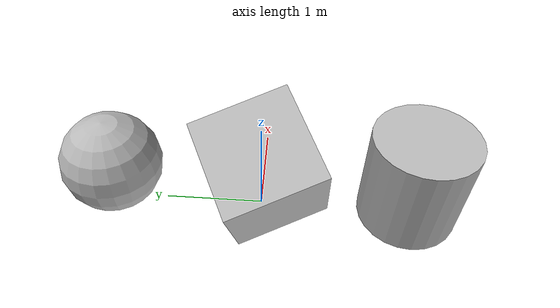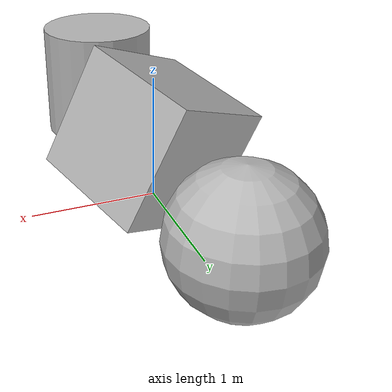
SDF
<?xml version="1.0" ?>
<sdf version="1.4">
    <world name="default">
        <include>
            <uri>model://sun</uri>
        </include>
        <physics type="rtql8">
            <gravity>0 0 -10.0</gravity>
        </physics>
        <model name="box">
            <static>true</static>
            <pose>0 0 0.5 1 2 3</pose>
            <link name="link">
                <collision name="collision">
                    <geometry>
                        <box>
                            <size>1 1 1</size>
                        </box>
                    </geometry>
                </collision>
                <visual name="visual">
                    <geometry>
                        <box>
                            <size>1 1 1</size>
                        </box>
                    </geometry>
                    <material>
                        <script>Gazebo/WoodPallet</script>
                    </material>
                </visual>
            </link>
        </model>
        <model name="sphere">
            <static>true</static>
            <pose>0 1.5 0.5 0 0 0</pose>
            <link name="link">
                <collision name="collision">
                    <geometry>
                        <sphere>
                            <radius>0.5</radius>
                        </sphere>
                    </geometry>
                </collision>
                <visual name="visual">
                    <geometry>
                        <sphere>
                            <radius>0.5</radius>
                        </sphere>
                    </geometry>
                    <material>
                        <script>Gazebo/WoodPallet</script>
                    </material>
                </visual>
            </link>
        </model>
        <model name="cylinder">
            <static>true</static>
            <pose>0 -1.5 0.5 0 0 0</pose>
            <link name="link">
                <collision name="collision">
                    <geometry>
                        <cylinder>
                            <radius>0.5</radius>
                            <length>1.0</length>
                        </cylinder>
                    </geometry>
                </collision>
                <visual name="visual">
                    <geometry>
                        <cylinder>
                            <radius>0.5</radius>
                            <length>1.0</length>
                        </cylinder>
                    </geometry>
                    <material>
                        <script>Gazebo/WoodPallet</script>
                    </material>
                </visual>
            </link>
        </model>
    </world>
</sdf>
